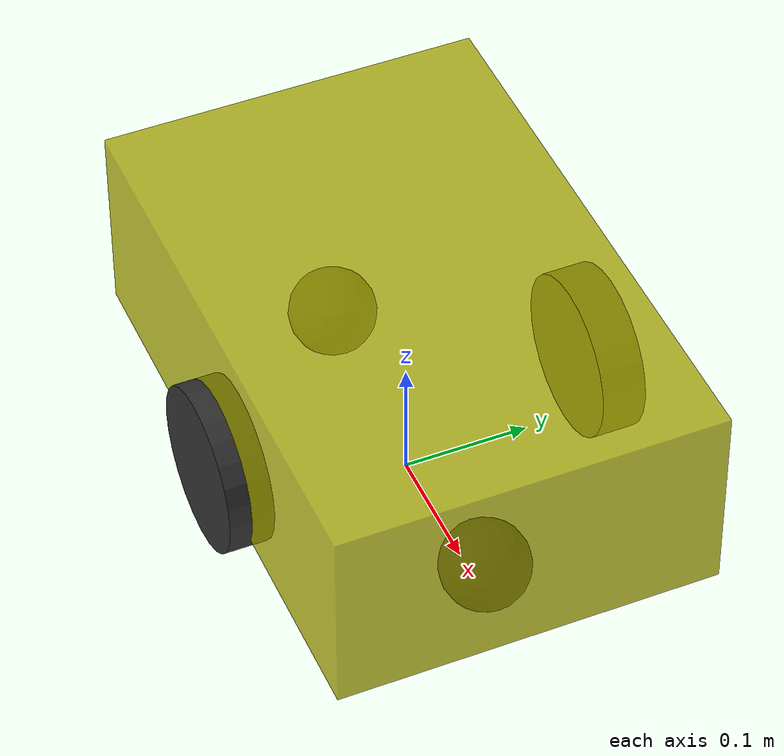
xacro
<robot xmlns:xacro="http://wiki.ros.org/xacro">
    <xacro:include filename="$(find robot)/urdf/common_inertia.xacro" />
    <!-- PI 值 -->
    <xacro:property name="PI" value="3.1416"/>
    <!-- 定义车辆参数 -->
    <!-- 车体长宽高 -->
    <xacro:property name="base_link_x" value="0.45"/>
    <xacro:property name="base_link_y" value="0.30"/>
    <xacro:property name="base_link_z" value="0.16"/>
    <!-- 离地间距 -->
    <xacro:property name="distance" value="0.04"/>
    <!-- 车轮半径 宽度 -->
    <xacro:property name="wheel_radius" value="0.065"/>
    <xacro:property name="wheel_length" value="0.035"/>

    <!-- 定义颜色 -->
    <material name="yellow">
        <color rgba="0.7 0.7 0 0.8" />
    </material>
    <material name="red">
        <color rgba="0.8 0.1 0.1 0.8" />
    </material>
    <material name="gray">
        <color rgba="0.2 0.2 0.2 0.95" />
      </material>
    <!-- 定义 base_footprint -->
    <link name="base_footprint">
        <visual>
            <geometry>
                <sphere radius="0.001"/>
            </geometry>
        </visual>
    </link>

    <!-- 定义 base_link -->
    <link name="base_link">
        <visual>
            <!-- 形状 -->
            <geometry>
                <box size="${base_link_x} ${base_link_y} ${base_link_z}" />
            </geometry>
            <origin xyz="0 0 0" rpy="0 0 0" />
            <material name="yellow"/>
        </visual>
        <collision>
            <!-- 形状 -->
            <geometry>
                <box size="${base_link_x} ${base_link_y} ${base_link_z}" />
            </geometry>
            <origin xyz="0 0 0" rpy="0 0 0" />
            <material name="yellow"/>
        </collision>
        <xacro:box_inertia m="5.0" w="${base_link_x}" d="${base_link_y}" h="${base_link_z}"/>
    </link>
    <joint name="baselink2basefootprint" type="fixed">
        <parent link="base_footprint"/>
        <child link="base_link"/>
        <origin xyz="0.0 0.0 ${distance + base_link_z / 2}"/>
    </joint>
    <!-- 车轮宏定义 -->
    <xacro:macro name="wheel_func" params="wheel_name is_front is_left" >
        <link name="${wheel_name}_wheel">
            <visual>
                <geometry>
                    <cylinder radius="${wheel_radius}" length="${wheel_length}" />
                </geometry>
                <origin xyz="0 0 0" rpy="${PI / 2} 0 0" />
                <material name="gray"/>
            </visual>
            <collision>
                 <geometry>
                    <cylinder radius="${wheel_radius}" length="${wheel_length}" />
                </geometry>
                <origin xyz="0 0 0" rpy="${PI / 2} 0 0" />
                <material name="gray"/>
            </collision>
            <xacro:cylinder_inertia m="0.15" r="${wheel_radius}" h="${wheel_length}"/>
        </link>
        <joint name="${wheel_name}_wheel_joint" type="continuous">
            <parent link="base_link"  />
            <child link="${wheel_name}_wheel" />
            <origin xyz="${(base_link_x / 2 - wheel_radius) * is_front} ${base_link_y / 2 * is_left} ${(base_link_z / 2 + distance - wheel_radius) * -1}" rpy="0 0 0" />
            <axis xyz="0 1 0" />
            <dynamics damping="0.08" friction="0.01" />
        </joint>
    </xacro:macro>
    <xacro:macro name="wheel_friction" params="wheel_name">
        <gazebo reference="${wheel_name}_wheel">
            <mu1>1.0</mu1>
            <mu2>0.25</mu2>
            <kp>1000000.0</kp>
            <kd>10.0</kd>
        </gazebo>
    </xacro:macro>

    <xacro:macro name="caster_func" params="caster_name is_front">
        <link name="${caster_name}_caster">
            <visual>
                <geometry>
                    <sphere radius="0.035" />
                </geometry>
                <material name="gray" />
            </visual>
            <collision>
                <geometry>
                    <sphere radius="0.035" />
                </geometry>
            </collision>
            <xacro:sphere_inertia m="0.05" r="0.035" />
        </link>
        <joint name="${caster_name}_caster_joint" type="fixed">
            <parent link="base_link" />
            <child link="${caster_name}_caster" />
            <origin xyz="${(base_link_x / 2 - 0.08) * is_front} 0 ${(base_link_z / 2 + distance - 0.035) * -1}" rpy="0 0 0" />
        </joint>
        <gazebo reference="${caster_name}_caster">
            <mu1>0.05</mu1>
            <mu2>0.05</mu2>
            <kp>1000000.0</kp>
            <kd>10.0</kd>
        </gazebo>
    </xacro:macro>

    <!-- Two centered drive wheels plus low-friction front/rear supports. -->
    <xacro:wheel_func wheel_name="left_front" is_front="0" is_left="1" />
    <xacro:wheel_func wheel_name="right_front" is_front="0" is_left="-1" />
    <xacro:wheel_friction wheel_name="left_front" />
    <xacro:wheel_friction wheel_name="right_front" />
    <xacro:caster_func caster_name="front" is_front="1" />
    <xacro:caster_func caster_name="rear" is_front="-1" />
</robot>
